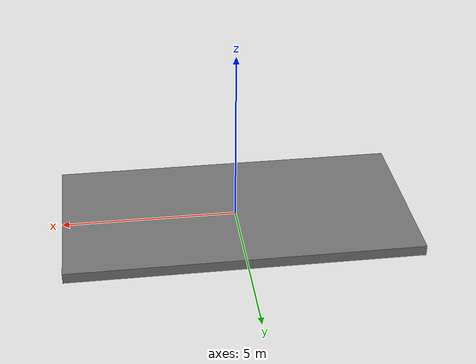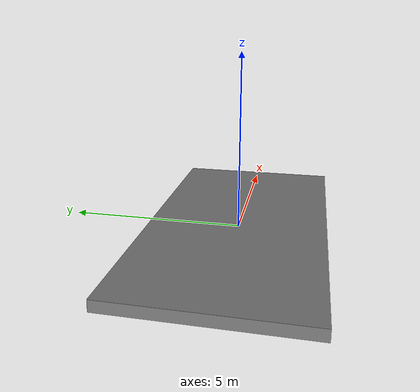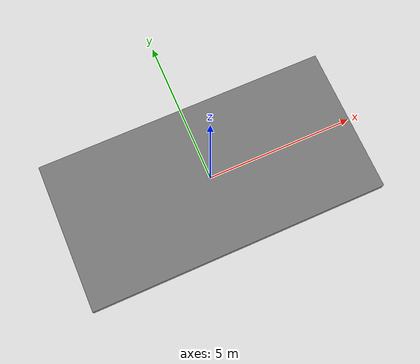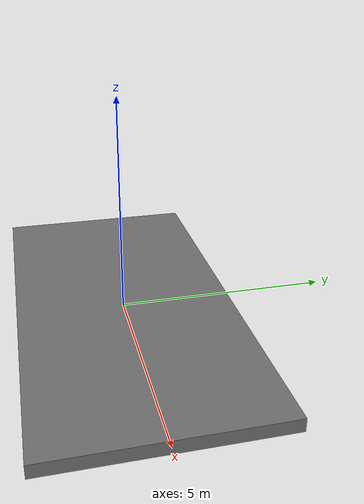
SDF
<?xml version="1.0"?>
<sdf version="1.5">
  <model name="asphalt_road_thick">
    <static>true</static>
    <link name="link">
      <collision name="collision">
        <geometry>
          <box>
            <size>10 5 0.3</size>
          </box>
        </geometry>
      </collision>
      <visual name="visual">
        <cast_shadows>false</cast_shadows>
        <geometry>
          <box>
            <size>10 5 0.3</size>
          </box>
        </geometry>
        <material>
          <ambient>0.5 0.5 0.5 1.0</ambient>
          <diffuse>0.5 0.5 0.5 1.0</diffuse>
          <specular>0.2 0.2 0.2 1.0</specular>
          <pbr>
            <metal>
              <albedo_map>materials/textures/tarmac2x5.png</albedo_map>
            </metal>
          </pbr>
        </material>
      </visual>
    </link>
  </model>
</sdf>
